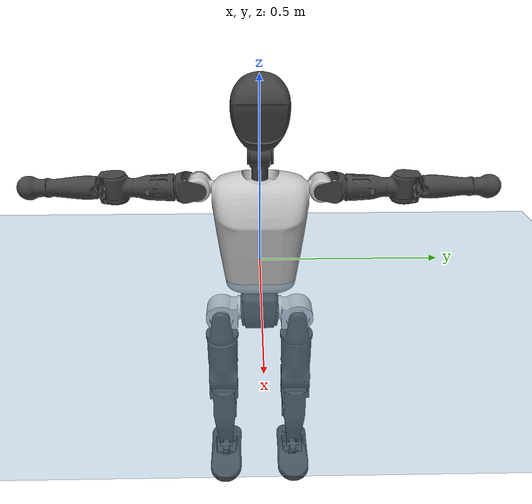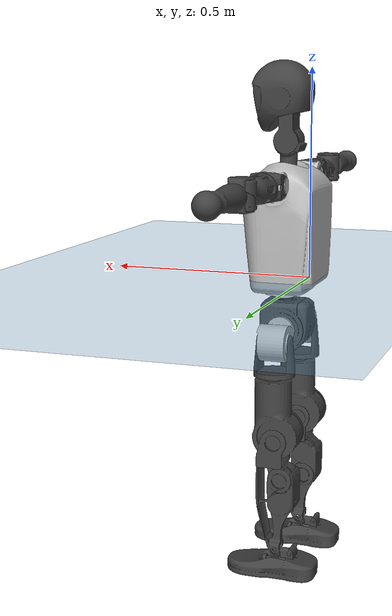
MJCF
<mujoco model="T1">
  <compiler angle="radian" assetdir="assets" balanceinertia="true" inertiafromgeom="false"/>

  <option timestep="0.005" density="1.2" viscosity="2e-05"/>

  <size nkey="1"/>

  <visual>
    <quality shadowsize="8192"/>
    <map shadowclip="0.5"/>
  </visual>

  <default>
    <default class="/">
      <joint armature="0.01" damping="0.01" frictionloss="0.1"/>
      <geom contype="0" conaffinity="0" group="1" solref="-1000 -80"/>
      <site size="0.01 0.005 0.005" group="5"/>
      <general forcelimited="true" biastype="affine" gainprm="25" biasprm="0 -25 -0.6"/>
      <default class="t1">
        <geom rgba="0.25 0.25 0.25 1"/>
        <default class="visual">
          <geom type="mesh" group="2"/>
        </default>
        <default class="collision">
          <geom group="3"/>
        </default>
        <default class="foot">
          <geom size="0.1115 0.05 0.015" type="box" condim="6" group="4" priority="1" solimp="0.015 1 0.015"/>
        </default>
        <default class="reward_collision_sphere">
          <geom group="5" rgba="1 0 0 1"/>
        </default>
      </default>
    </default>
  </default>

  <asset>
    <texture type="skybox" colorspace="auto" name="//unnamed_texture_0" builtin="gradient" rgb1="0.95 0.95 0.95" rgb2="0.95 0.95 0.95" width="100" height="600"/>
    <texture type="2d" colorspace="auto" name="texplane" builtin="checker" rgb1="0.345 0.575 0.748" rgb2="0.345 0.575 0.748" markrgb="1 1 1" width="512" height="512"/>
    <material name="MatPlane" class="/" texture="texplane" texuniform="true" texrepeat="2 2" specular="0.9"/>
    <mesh name="Trunk" class="/" file="Trunk.stl"/>
    <mesh name="H1" class="/" file="H1.stl"/>
    <mesh name="H2" class="/" file="H2.stl"/>
    <mesh name="AL1" class="/" file="AL1.stl"/>
    <mesh name="AL2" class="/" file="AL2.stl"/>
    <mesh name="AL3" class="/" file="AL3.stl"/>
    <mesh name="left_hand_link" class="/" file="left_hand_link.stl"/>
    <mesh name="AR1" class="/" file="AR1.stl"/>
    <mesh name="AR2" class="/" file="AR2.stl"/>
    <mesh name="AR3" class="/" file="AR3.stl"/>
    <mesh name="right_hand_link" class="/" file="right_hand_link.stl"/>
    <mesh name="Waist" class="/" file="Waist.stl"/>
    <mesh name="Hip_Pitch_Left" class="/" file="Hip_Pitch_Left.stl"/>
    <mesh name="Hip_Roll_Left" class="/" file="Hip_Roll_Left.stl"/>
    <mesh name="Hip_Yaw_Left" class="/" file="Hip_Yaw_Left.stl"/>
    <mesh name="Shank_Left" class="/" file="Shank_Left.stl"/>
    <mesh name="Ankle_Cross_Left" class="/" file="Ankle_Cross_Left.stl"/>
    <mesh name="left_foot_link" class="/" file="left_foot_link.stl"/>
    <mesh name="Hip_Pitch_Right" class="/" file="Hip_Pitch_Right.stl"/>
    <mesh name="Hip_Roll_Right" class="/" file="Hip_Roll_Right.stl"/>
    <mesh name="Hip_Yaw_Right" class="/" file="Hip_Yaw_Right.stl"/>
    <mesh name="Shank_Right" class="/" file="Shank_Right.stl"/>
    <mesh name="Ankle_Cross_Right" class="/" file="Ankle_Cross_Right.stl"/>
    <mesh name="right_foot_link" class="/" file="right_foot_link.stl"/>
  </asset>

  <worldbody>
    <geom name="floor" class="/" size="100 100 0.125" type="plane" group="0" material="MatPlane"/>
    <light name="toplight_shadow" class="/" pos="0 0 5" dir="0.0990148 0.0990148 -0.990148" type="directional" ambient="0.04 0.04 0.04" diffuse="0.55 0.55 0.55" specular="0.12 0.12 0.12"/>
    <light name="toplight_fill" class="/" pos="0 0 5" dir="0.0990148 0.0990148 -0.990148" type="directional" castshadow="false" ambient="0.04 0.04 0.04" diffuse="0.3 0.3 0.3" specular="0.08 0.08 0.08"/>
    <body name="trunk" childclass="t1" pos="-1.46782e-05 0.000858205 0.000331033" quat="1 0.000467013 0.000407123 0.000462147">
      <inertial pos="0.0467779 -0.00153854 0.114541" quat="0.999951 5.36444e-05 -0.00985492 -0.000935734" mass="11.2978" diaginertia="0.0467065 0.0822577 0.0802336"/>
      <joint name="//unnamed_joint_0" type="free" armature="0" damping="0" frictionloss="0"/>
      <geom name="//unnamed_geom_1" class="visual" rgba="0.76 0.76 0.76 1" mesh="Trunk"/>
      <geom name="//unnamed_geom_2" class="collision" size="0.0741351 0.0988468 0.14827" pos="0.0524019 0 0.129699" type="box"/>
      <geom name="//unnamed_geom_3" class="reward_collision_sphere" size="0.113674" pos="0.0524019 0 0.108082"/>
      <geom name="//unnamed_geom_4" class="reward_collision_sphere" size="0.014827" pos="0.0524019 0.0859535 0"/>
      <geom name="//unnamed_geom_5" class="reward_collision_sphere" size="0.014827" pos="0.0524019 -0.0859535 0"/>
      <geom name="//unnamed_geom_6" class="reward_collision_sphere" size="0.014827" pos="0.0524019 0.1082 0.194548"/>
      <geom name="//unnamed_geom_7" class="reward_collision_sphere" size="0.014827" pos="0.0524019 -0.1082 0.194548"/>
      <site name="imu" pos="-8.29011e-05 -0.00105621 1.66296e-05" size="0.00988468"/>
      <camera name="track" pos="0 -2.02243 0" quat="0.707107 0.707107 0 0" mode="trackcom"/>
      <camera name="ego_camera" pos="0.10655 0 0.453945" quat="-0.5 -0.5 0.5 0.5"/>
      <body name="H1" pos="0.0550472 -0.00108624 0.261167" quat="1 0.000501016 0.000170776 3.12761e-05">
        <inertial pos="-0.000665917 0.00010258 0.0610798" quat="0.764801 -0.0153626 0.00853225 0.644027" mass="0.418282" diaginertia="0.000119443 0.000227332 0.000215754"/>
        <joint name="AAHead_yaw" pos="0 0 0" axis="-0.00270126 0.00698676 0.999972" stiffness="0.00443175" range="-1.55839 1.56347" armature="0.0101482" damping="0.00933474" frictionloss="0.0977975"/>
        <geom name="//unnamed_geom_8" class="visual" mesh="H1"/>
        <body name="H2" pos="-0.00107843 0.00142147 0.0670718" quat="1 7.72931e-05 -2.04652e-05 8.80482e-05">
          <inertial pos="0.00522301 0.00202534 0.106797" quat="0.988456 0.107042 -0.0745517 -0.0770686" mass="0.60803" diaginertia="0.00104289 0.00200713 0.00252631"/>
          <joint name="Head_pitch" pos="0 0 0" axis="0.000509404 -0.999986 -0.00526958" range="-1.21739 0.349873" armature="0.00908786" damping="0.00603911" frictionloss="0.10939"/>
          <geom name="//unnamed_geom_9" class="visual" mesh="H2"/>
          <geom name="//unnamed_geom_10" class="collision" size="0.0790774" pos="0.00873364 0 0.11889"/>
          <geom name="//unnamed_geom_11" class="reward_collision_sphere" size="0.0889621" pos="0.0174673 0 0.108082"/>
        </body>
      </body>
      <body name="AL1" pos="0.0520957 0.10662 0.234929" quat="1 -2.57908e-05 0.00055156 3.96262e-05">
        <inertial pos="-0.00238915 0.0459051 0.000821503" quat="0.504932 0.493749 -0.505689 0.495515" mass="0.511786" diaginertia="0.000690646 0.00136499 0.00042837"/>
        <joint name="Left_Shoulder_Pitch" pos="0 0 0" axis="0.00638212 0.99995 0.00769647" range="-3.3186 1.23774" armature="0.00977362" damping="0.00729491" frictionloss="0.0986216"/>
        <geom name="//unnamed_geom_12" class="visual" rgba="0.76 0.76 0.76 1" mesh="AL1"/>
        <body name="AL2" pos="0.000412332 0.0474019 -0.000208744" quat="1 7.55837e-07 2.98091e-05 8.50932e-06">
          <inertial pos="0.00271003 0.0391192 -0.00106478" quat="0.489025 0.510849 -0.4866 0.512941" mass="0.155571" diaginertia="0.000203746 0.000364434 0.000262766"/>
          <joint name="Left_Shoulder_Roll" pos="0 0 0" axis="-0.999998 -0.00133775 -0.00166775" range="-1.5672 1.74892" armature="0.00992588" damping="0.00717485" frictionloss="0.0989178"/>
          <geom name="//unnamed_geom_13" class="visual" mesh="AL2"/>
          <body name="AL3" pos="0.000350663 0.0610666 -0.000511803" quat="1 3.66162e-05 3.60531e-05 4.76273e-06">
            <inertial pos="0.000229138 0.0861842 0.000120663" quat="0.706504 0.707655 0.00714316 -0.00497343" mass="0.980547" diaginertia="0.00645041 0.0134888 0.000889452"/>
            <joint name="Left_Elbow_Pitch" pos="0 0 0" axis="0.000325272 -1 -0.000822595" range="-2.25654 2.26347" armature="0.00986742" damping="0.0209725" frictionloss="0.107979"/>
            <geom name="//unnamed_geom_14" class="visual" mesh="AL3"/>
            <geom name="//unnamed_geom_15" class="collision" size="0.029654 0.0741351" pos="0 0.0505609 0" quat="0.707105 0.707108 0 0" type="cylinder"/>
            <geom name="//unnamed_geom_16" class="reward_collision_sphere" size="0.0355848"/>
            <body name="left_hand_link" pos="0.00182734 0.148929 0.000614043" quat="1 4.47773e-06 4.23839e-05 6.03136e-05">
              <inertial pos="0.00123982 0.111084 -0.000563482" quat="0.710355 0.703839 0.00231171 -0.000285462" mass="0.315273" diaginertia="0.00411506 0.00875831 0.000318546"/>
              <joint name="Left_Elbow_Yaw" pos="0 0 0" axis="0.000640157 0.000308304 1" range="-2.45492 0.00972232" armature="0.00967422" damping="0.00734268" frictionloss="0.0985628"/>
              <geom name="//unnamed_geom_17" class="visual" mesh="left_hand_link"/>
              <geom name="//unnamed_geom_18" class="collision" size="0.029654 0.0864909" pos="0 0.131458 0" quat="0.707105 0.707108 0 0" type="cylinder"/>
              <geom name="//unnamed_geom_19" class="reward_collision_sphere" size="0.0494234"/>
              <geom name="//unnamed_geom_20" class="reward_collision_sphere" size="0.0345964" pos="0 0.111234 0"/>
              <geom name="//unnamed_geom_21" class="reward_collision_sphere" size="0.0345964" pos="0 0.217412 0"/>
            </body>
          </body>
        </body>
      </body>
      <body name="AR1" pos="0.04901 -0.10848 0.237468" quat="1 -0.000747235 -0.000225861 -8.15042e-05">
        <inertial pos="-0.00103801 -0.0446394 -0.00108989" quat="0.503854 0.49592 -0.505425 0.494712" mass="0.521596" diaginertia="0.000706232 0.00138986 0.000439343"/>
        <joint name="Right_Shoulder_Pitch" pos="0 0 0" axis="-0.000624216 -1 -3.28594e-05" range="-1.23354 3.3107" armature="0.0103101" damping="0.000803443" frictionloss="0.103665"/>
        <geom name="//unnamed_geom_22" class="visual" rgba="0.76 0.76 0.76 1" mesh="AR1"/>
        <body name="AR2" pos="-0.000731452 -0.0467149 -0.00153673" quat="1 0.000219716 -0.000361105 -0.000399771">
          <inertial pos="0.00439627 -0.0391458 0.000414538" quat="0.511706 0.487998 -0.511742 0.487992" mass="0.154662" diaginertia="0.000203931 0.000361711 0.000260301"/>
          <joint name="Right_Shoulder_Roll" pos="0 0 0" axis="-0.999954 0.00698461 0.00664184" range="-1.72053 1.5897" armature="0.00984829" damping="0.00267146" frictionloss="0.0963584"/>
          <geom name="//unnamed_geom_23" class="visual" mesh="AR2"/>
          <body name="AR3" pos="-0.00032217 -0.0616014 -0.000350861" quat="1 -7.20349e-05 -0.000539227 -0.000341832">
            <inertial pos="0.00174003 -0.086122 -0.00105288" quat="0.707568 0.706645 0.000504408 -0.000191762" mass="0.986855" diaginertia="0.00671988 0.0140612 0.000945276"/>
            <joint name="Right_Elbow_Pitch" pos="0 0 0" axis="0.00378049 0.999993 -0.000153948" stiffness="0.00285476" range="-2.25284 2.22423" armature="0.0098424" damping="0.00988922" frictionloss="0.0944376"/>
            <geom name="//unnamed_geom_24" class="visual" mesh="AR3"/>
            <geom name="//unnamed_geom_25" class="collision" size="0.029654 0.0741351" pos="0 -0.0505609 0" quat="0.707105 0.707108 0 0" type="cylinder"/>
            <geom name="//unnamed_geom_26" class="reward_collision_sphere" size="0.0355848"/>
            <body name="right_hand_link" pos="-6.40888e-05 -0.148235 0.000546104" quat="1 -0.00010457 -0.000478896 7.71315e-05">
              <inertial pos="0.00138752 -0.111731 -0.000114743" quat="0.706398 0.707814 0.000391074 -0.000217314" mass="0.305343" diaginertia="0.00393054 0.00840807 0.000315074"/>
              <joint name="Right_Elbow_Yaw" pos="0 0 0" axis="-0.000918831 5.31113e-05 1" stiffness="0.00324957" range="-0.00629176 2.41528" armature="0.0103108" damping="0.00580045" frictionloss="0.0994363"/>
              <geom name="//unnamed_geom_27" class="visual" mesh="right_hand_link"/>
              <geom name="//unnamed_geom_28" class="collision" size="0.029654 0.0864909" pos="0 -0.131458 0" quat="0.707105 0.707108 0 0" type="cylinder"/>
              <geom name="//unnamed_geom_29" class="reward_collision_sphere" size="0.0494234"/>
              <geom name="//unnamed_geom_30" class="reward_collision_sphere" size="0.0345964" pos="0 -0.111234 0"/>
              <geom name="//unnamed_geom_31" class="reward_collision_sphere" size="0.0345964" pos="0 -0.217412 0"/>
            </body>
          </body>
        </body>
      </body>
      <body name="Waist" pos="0.0546581 -0.00254595 -0.125494" quat="1 4.44758e-06 -1.42061e-05 -2.71155e-05">
        <inertial pos="0.000753352 9.53261e-06 0.00749534" quat="0.983484 0.000516552 -0.180977 0.00247684" mass="2.48029" diaginertia="0.00276536 0.00568127 0.00699669"/>
        <joint name="Waist" pos="0 0 0" axis="-0.00561626 -0.000761761 0.999984" stiffness="0.00140412" range="-1.551 1.59121" armature="0.0101556" damping="0.00115284" frictionloss="0.095987"/>
        <geom name="//unnamed_geom_32" class="visual" mesh="Waist"/>
        <body name="Hip_Pitch_Left" pos="0.000843531 0.107989 0.000290227" quat="1 -5.8196e-07 -0.000495474 6.66084e-05">
          <inertial pos="0.00156604 -0.00710952 -0.0210335" quat="0.975604 0.219153 0.0128343 -0.00201942" mass="1.00338" diaginertia="0.000927283 0.00155898 0.00186748"/>
          <joint name="Left_Hip_Pitch" pos="0 0 0" axis="-0.000272175 1 -0.000914973" range="-1.79658 1.59369" armature="0.0100598" damping="0.00423064" frictionloss="0.097293"/>
          <geom name="//unnamed_geom_33" class="visual" rgba="0.76 0.76 0.76 1" mesh="Hip_Pitch_Left"/>
          <body name="Hip_Roll_Left" pos="0.0021332 -0.000120304 -0.0224599" quat="1 -6.79634e-05 -8.59223e-06 9.27456e-05">
            <inertial pos="0.000924482 0.000110086 -0.0589635" quat="0.7084 -0.00433923 -0.00663519 0.705766" mass="0.38001" diaginertia="0.000903649 0.00160224 0.000755079"/>
            <joint name="Left_Hip_Roll" pos="0 0 0" axis="-0.999995 0.000551248 0.00302777" range="-1.54948 0.233456" armature="0.0100131" damping="0.00540633" frictionloss="0.101523"/>
            <geom name="//unnamed_geom_34" class="visual" mesh="Hip_Roll_Left"/>
            <geom name="//unnamed_geom_35" class="reward_collision_sphere" size="0.0543657"/>
            <body name="Hip_Yaw_Left" pos="-0.000152966 0.000969118 -0.0867677" quat="1 -1.22233e-05 -3.95062e-05 -8.21019e-05">
              <inertial pos="-0.00536518 -0.000583315 -0.097412" quat="0.700283 -0.0353618 -0.0307972 0.712324" mass="2.05497" diaginertia="0.0127971 0.0258701 0.00374086"/>
              <joint name="Left_Hip_Yaw" pos="0 0 0" axis="-8.14839e-05 -0.00128728 -0.999999" range="-1.00701 1.04938" armature="0.00955636" damping="0" frictionloss="0.0997063"/>
              <geom name="//unnamed_geom_36" class="visual" mesh="Hip_Yaw_Left"/>
              <geom name="//unnamed_geom_37" class="collision" size="0.0494234 0.0790774" type="cylinder"/>
              <body name="Shank_Left" pos="-0.0119409 0.000890403 -0.146847" quat="1 0.000288293 -0.000142543 0.000262764">
                <inertial pos="-0.00596001 0.000764351 -0.135268" quat="0.997573 0.00137779 -0.0240461 0.0653239" mass="1.7022" diaginertia="0.0178936 0.0368906 0.0027615"/>
                <joint name="Left_Knee_Pitch" pos="0 0 0" axis="0.000715878 0.999985 0.00548205" range="-0.0132813 2.34371" armature="0.00984441" damping="0.0171001" frictionloss="0.102417"/>
                <geom name="//unnamed_geom_38" class="visual" mesh="Shank_Left"/>
                <geom name="//unnamed_geom_39" class="collision" size="0.0494234 0.0741351" pos="0 0 -0.129699" type="cylinder"/>
                <geom name="//unnamed_geom_40" class="reward_collision_sphere" size="0.0642504"/>
                <body name="Ankle_Cross_Left" pos="0.00115959 0.0008514 -0.303732" quat="1 0.000308843 3.73587e-05 0.000182233">
                  <inertial pos="-0.00463225 0.00171108 -0.00883691" quat="0.443339 0.550871 0.550522 0.443753" mass="0.070411" diaginertia="1.46253e-05 2.65984e-05 1.67056e-05"/>
                  <joint name="Left_Ankle_Pitch" pos="0 0 0" axis="0.00271518 0.999995 0.00157931" range="-0.867059 0.344418" armature="0.00932637" damping="0.00334838" frictionloss="0.0958159"/>
                  <geom name="//unnamed_geom_41" class="visual" mesh="Ankle_Cross_Left"/>
                  <body name="left_foot_link" pos="0.00052517 -0.000928109 -0.01158" quat="0.999999 -0.000335827 0.000845482 -0.000430818">
                    <inertial pos="-0.00172645 -0.000264173 -0.00887918" quat="-0.000260664 0.620634 -0.00363196 0.784092" mass="0.662458" diaginertia="0.00135532 0.00250554 0.00324124"/>
                    <joint name="Left_Ankle_Roll" pos="0 0 0" axis="-0.999996 -0.00264073 -0.00125618" range="-0.468158 0.408229" armature="0.00951809" damping="0.00724527" frictionloss="0.0915487"/>
                    <geom name="//unnamed_geom_42" class="visual" mesh="left_foot_link"/>
                    <geom name="left_foot" class="foot" size="0.104469 0.0506692 0.0149644" pos="0.00873364 0 -0.0162123"/>
                    <geom name="//unnamed_geom_44" class="reward_collision_sphere" size="0.0514003" pos="0.00873364 0 -0.0162123"/>
                    <geom name="//unnamed_geom_45" class="reward_collision_sphere" size="0.029654" pos="0.0829696 -0.023258 -0.0162123"/>
                    <geom name="//unnamed_geom_46" class="reward_collision_sphere" size="0.029654" pos="-0.0611355 -0.023258 -0.0162123"/>
                    <site name="left_foot" class="foot" pos="0.00873364 0 -0.0162123" size="0.00988468"/>
                  </body>
                </body>
              </body>
            </body>
          </body>
        </body>
        <body name="Hip_Pitch_Right" pos="-0.00202833 -0.10839 -0.000134801" quat="1 -6.3879e-05 -3.18519e-05 8.84082e-05">
          <inertial pos="-0.000458829 0.00734208 -0.0198598" quat="0.9737 -0.227312 0.0152929 -0.00183267" mass="0.982095" diaginertia="0.000934655 0.00154659 0.0018562"/>
          <joint name="Right_Hip_Pitch" pos="0 0 0" axis="0.000569818 -1 -0.000459866" stiffness="0.0058049" range="-1.5539 1.80725" armature="0.00985222" damping="0.00832241" frictionloss="0.103811"/>
          <geom name="//unnamed_geom_47" class="visual" rgba="0.76 0.76 0.76 1" mesh="Hip_Pitch_Right"/>
          <body name="Hip_Roll_Right" pos="0.00160906 -0.0015884 -0.0222497" quat="1 2.17512e-05 7.41192e-06 7.42599e-06">
            <inertial pos="0.000449948 -0.00104808 -0.0578606" quat="0.707162 -0.00620573 -0.00642965 0.706995" mass="0.376196" diaginertia="0.000878256 0.0016009 0.000755919"/>
            <joint name="Right_Hip_Roll" pos="0 0 0" axis="-0.999999 0.00122948 -0.000156783" stiffness="0.00638113" range="-0.201448 1.53144" armature="0.00994037" damping="0" frictionloss="0.090194"/>
            <geom name="//unnamed_geom_48" class="visual" mesh="Hip_Roll_Right"/>
            <geom name="//unnamed_geom_49" class="reward_collision_sphere" size="0.0543657"/>
            <body name="Hip_Yaw_Right" pos="0.00202958 -0.000271018 -0.0885367" quat="1 -3.0555e-05 0.000172036 0.000227561">
              <inertial pos="-0.00621971 -0.000104458 -0.0966823" quat="0.708607 -0.0306644 -0.0402803 0.703785" mass="2.07238" diaginertia="0.0127929 0.0266156 0.00374133"/>
              <joint name="Right_Hip_Yaw" pos="0 0 0" axis="0.00390593 0.00480556 -0.999981" range="-0.990939 1.01518" armature="0.00969847" damping="0.00849922" frictionloss="0.101189"/>
              <geom name="//unnamed_geom_50" class="visual" mesh="Hip_Yaw_Right"/>
              <geom name="//unnamed_geom_51" class="collision" size="0.0494234 0.0790774" type="cylinder"/>
              <body name="Shank_Right" pos="-0.0100512 -0.00101795 -0.144559" quat="1 -5.83565e-05 -1.17441e-05 7.35365e-05">
                <inertial pos="-0.00618806 0.00033181 -0.132405" quat="0.999049 -5.89555e-05 -0.0208184 -0.0383017" mass="1.77165" diaginertia="0.0182256 0.0374325 0.00291992"/>
                <joint name="Right_Knee_Pitch" pos="0 0 0" axis="-0.00670842 -0.999972 -0.00336851" range="-2.34528 -0.00762124" armature="0.00982303" damping="0.0161713" frictionloss="0.097743"/>
                <geom name="//unnamed_geom_52" class="visual" mesh="Shank_Right"/>
                <geom name="//unnamed_geom_53" class="collision" size="0.0494234 0.0741351" pos="0 0 -0.129699" type="cylinder"/>
                <geom name="//unnamed_geom_54" class="reward_collision_sphere" size="0.0642504"/>
                <body name="Ankle_Cross_Right" pos="-0.00103323 -0.000990759 -0.303857" quat="1 0.000334975 -0.0001191 -0.000300787">
                  <inertial pos="-0.00378491 0.00102497 -0.00830889" quat="0.442859 0.551214 0.551087 0.443105" mass="0.0707679" diaginertia="1.43463e-05 2.71839e-05 1.66616e-05"/>
                  <joint name="Right_Ankle_Pitch" pos="0 0 0" axis="0.00105198 -0.999999 -0.000471618" range="-0.393365 0.875821" armature="0.00992083" damping="0.00909614" frictionloss="0.096954"/>
                  <geom name="//unnamed_geom_55" class="visual" mesh="Ankle_Cross_Right"/>
                  <body name="right_foot_link" pos="0.00124236 0.000178049 -0.0135776" quat="1 9.57093e-05 9.4068e-05 6.91106e-05">
                    <inertial pos="-2.86086e-05 0.000607592 -0.00993066" quat="0.00385575 0.61931 0.00114209 0.785136" mass="0.686336" diaginertia="0.00139114 0.00254579 0.00322155"/>
                    <joint name="Right_Ankle_Roll" pos="0 0 0" axis="-0.999994 -0.00326045 0.00140406" range="-0.442777 0.451167" armature="0.0100941" damping="0.0091608" frictionloss="0.0895907"/>
                    <geom name="//unnamed_geom_56" class="visual" mesh="right_foot_link"/>
                    <geom name="right_foot" class="foot" size="0.0990885 0.0460886 0.0148062" pos="0.00873364 0 -0.0162123"/>
                    <geom name="//unnamed_geom_58" class="reward_collision_sphere" size="0.0395387"/>
                    <geom name="//unnamed_geom_59" class="reward_collision_sphere" size="0.029654" pos="0.00873364 0 -0.0162123"/>
                    <geom name="//unnamed_geom_60" class="reward_collision_sphere" size="0.029654" pos="0.0829696 0.023258 -0.0162123"/>
                    <geom name="//unnamed_geom_61" class="reward_collision_sphere" size="0.029654" pos="-0.0611355 0.023258 -0.0162123"/>
                    <site name="right_foot" class="foot" pos="0.00873364 0 -0.0162123" size="0.00988468"/>
                  </body>
                </body>
              </body>
            </body>
          </body>
        </body>
      </body>
    </body>
  </worldbody>

  <contact>
    <pair class="/" geom1="floor" geom2="left_foot" name="//unnamed_contact_0"/>
    <pair class="/" geom1="floor" geom2="right_foot" name="//unnamed_contact_1"/>
  </contact>

  <actuator>
    <general name="AAHead_yaw" class="/" joint="AAHead_yaw" forcerange="-7.12081 7.12081" gainprm="23.3874" biasprm="0 -23.3874 -0.564529"/>
    <general name="Head_pitch" class="/" joint="Head_pitch" forcerange="-6.71217 6.71217" gainprm="23.3874" biasprm="0 -23.3874 -0.564529"/>
    <general name="Left_Shoulder_Pitch" class="/" joint="Left_Shoulder_Pitch" forcerange="-16.2467 16.2467" gainprm="23.3874" biasprm="0 -23.3874 -0.564529"/>
    <general name="Left_Shoulder_Roll" class="/" joint="Left_Shoulder_Roll" forcerange="-17.6599 17.6599" gainprm="23.3874" biasprm="0 -23.3874 -0.564529"/>
    <general name="Left_Elbow_Pitch" class="/" joint="Left_Elbow_Pitch" forcerange="-18.4454 18.4454" gainprm="23.3874" biasprm="0 -23.3874 -0.564529"/>
    <general name="Left_Elbow_Yaw" class="/" joint="Left_Elbow_Yaw" forcerange="-18.1162 18.1162" gainprm="23.3874" biasprm="0 -23.3874 -0.564529"/>
    <general name="Right_Shoulder_Pitch" class="/" joint="Right_Shoulder_Pitch" forcerange="-17.8654 17.8654" gainprm="23.3874" biasprm="0 -23.3874 -0.564529"/>
    <general name="Right_Shoulder_Roll" class="/" joint="Right_Shoulder_Roll" forcerange="-17.651 17.651" gainprm="23.3874" biasprm="0 -23.3874 -0.564529"/>
    <general name="Right_Elbow_Pitch" class="/" joint="Right_Elbow_Pitch" forcerange="-18.3312 18.3312" gainprm="23.3874" biasprm="0 -23.3874 -0.564529"/>
    <general name="Right_Elbow_Yaw" class="/" joint="Right_Elbow_Yaw" forcerange="-18.1821 18.1821" gainprm="23.3874" biasprm="0 -23.3874 -0.564529"/>
    <general name="Waist" class="/" joint="Waist" forcerange="-30.7105 30.7105" gainprm="23.3874" biasprm="0 -23.3874 -0.564529"/>
    <general name="Left_Hip_Pitch" class="/" joint="Left_Hip_Pitch" forcerange="-43.7835 43.7835" gainprm="23.3874" biasprm="0 -23.3874 -0.564529"/>
    <general name="Left_Hip_Roll" class="/" joint="Left_Hip_Roll" forcerange="-30.5769 30.5769" gainprm="23.3874" biasprm="0 -23.3874 -0.564529"/>
    <general name="Left_Hip_Yaw" class="/" joint="Left_Hip_Yaw" forcerange="-30.5669 30.5669" gainprm="23.3874" biasprm="0 -23.3874 -0.564529"/>
    <general name="Left_Knee_Pitch" class="/" joint="Left_Knee_Pitch" forcerange="-56.8114 56.8114" gainprm="23.3874" biasprm="0 -23.3874 -0.564529"/>
    <general name="Left_Ankle_Pitch" class="/" joint="Left_Ankle_Pitch" forcerange="-21.0581 21.0581" gainprm="23.3874" biasprm="0 -23.3874 -0.564529"/>
    <general name="Left_Ankle_Roll" class="/" joint="Left_Ankle_Roll" forcerange="-14.1261 14.1261" gainprm="23.3874" biasprm="0 -23.3874 -0.564529"/>
    <general name="Right_Hip_Pitch" class="/" joint="Right_Hip_Pitch" forcerange="-44.4652 44.4652" gainprm="23.3874" biasprm="0 -23.3874 -0.564529"/>
    <general name="Right_Hip_Roll" class="/" joint="Right_Hip_Roll" forcerange="-31.0512 31.0512" gainprm="23.3874" biasprm="0 -23.3874 -0.564529"/>
    <general name="Right_Hip_Yaw" class="/" joint="Right_Hip_Yaw" forcerange="-29.3402 29.3402" gainprm="23.3874" biasprm="0 -23.3874 -0.564529"/>
    <general name="Right_Knee_Pitch" class="/" joint="Right_Knee_Pitch" forcerange="-59.3959 59.3959" gainprm="23.3874" biasprm="0 -23.3874 -0.564529"/>
    <general name="Right_Ankle_Pitch" class="/" joint="Right_Ankle_Pitch" forcerange="-19.8236 19.8236" gainprm="23.3874" biasprm="0 -23.3874 -0.564529"/>
    <general name="Right_Ankle_Roll" class="/" joint="Right_Ankle_Roll" forcerange="-15.3028 15.3028" gainprm="23.3874" biasprm="0 -23.3874 -0.564529"/>
  </actuator>

  <sensor>
    <gyro site="imu" name="imu_angular_velocity"/>
    <velocimeter site="imu" name="imu_linear_velocity"/>
    <framelinvel objtype="site" objname="left_foot" name="left_foot_global_linear_velocity"/>
    <framelinvel objtype="site" objname="right_foot" name="right_foot_global_linear_velocity"/>
  </sensor>

  <keyframe>
    <key name="home" qpos="0 0 0.6385 1 0 0 0 0 0 0 1.4 0 -0.4 0 -1.4 0 0.4 0 -0.4 0 0 0.8 -0.4 0 0.4 0 0 -0.8 0.4 0"/>
  </keyframe>
</mujoco>
